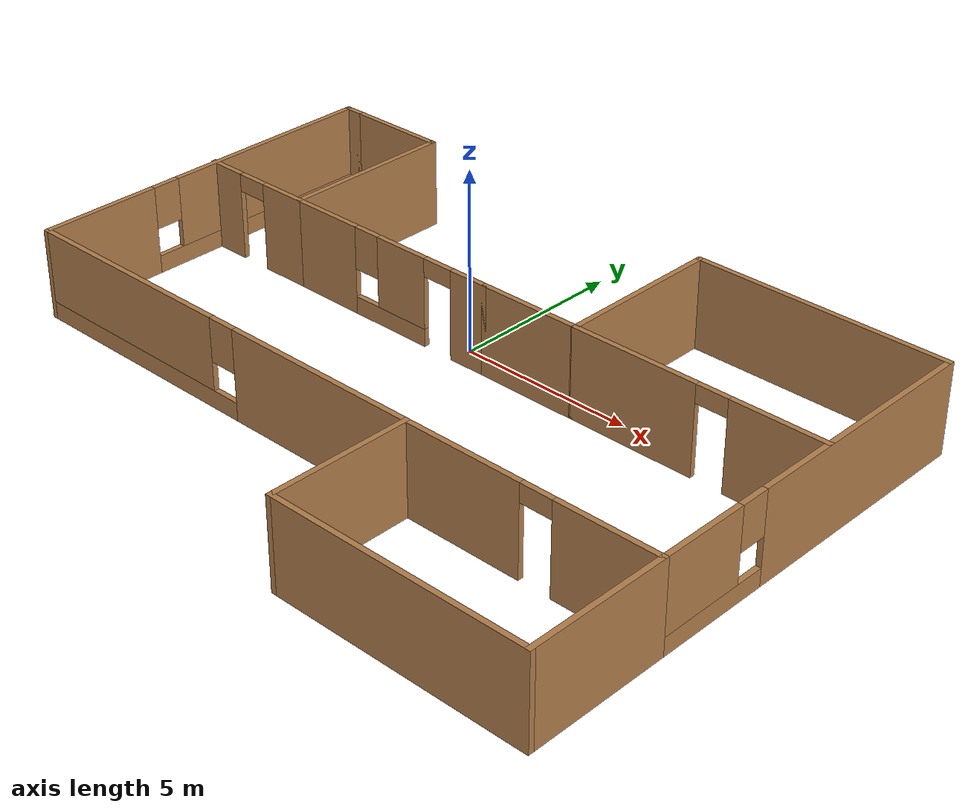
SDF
<?xml version='1.0'?>
<sdf version='1.7'>
  <model name='building'>
    <pose>1.02897 -2.78583 0 0 -0 0</pose>
    <link name='Wall_16'>
      <collision name='Wall_16_Collision'>
        <geometry>
          <box>
            <size>3 0.15 2.5</size>
          </box>
        </geometry>
        <pose>0 0 1.25 0 -0 0</pose>
      </collision>
      <visual name='Wall_16_Visual'>
        <pose>0 0 1.25 0 -0 0</pose>
        <geometry>
          <box>
            <size>3 0.15 2.5</size>
          </box>
        </geometry>
        <material>
          <script>
            <uri>file://media/materials/scripts/gazebo.material</uri>
            <name>Gazebo/Wood</name>
          </script>
          <ambient>1 1 1 1</ambient>
        </material>
        <meta>
          <layer>0</layer>
        </meta>
      </visual>
      <pose>-8.025 7.1 0 0 -0 0</pose>
    </link>
    <link name='Wall_17'>
      <collision name='Wall_17_Collision'>
        <geometry>
          <box>
            <size>5 0.15 2.5</size>
          </box>
        </geometry>
        <pose>0 0 1.25 0 -0 0</pose>
      </collision>
      <visual name='Wall_17_Visual'>
        <pose>0 0 1.25 0 -0 0</pose>
        <geometry>
          <box>
            <size>5 0.15 2.5</size>
          </box>
        </geometry>
        <material>
          <script>
            <uri>file://media/materials/scripts/gazebo.material</uri>
            <name>Gazebo/Wood</name>
          </script>
          <ambient>1 1 1 1</ambient>
        </material>
        <meta>
          <layer>0</layer>
        </meta>
      </visual>
      <pose>-6.6 4.675 0 0 -0 -1.5708</pose>
    </link>
    <link name='Wall_18'>
      <pose>-3.3 2.25 0 0 -0 0</pose>
      <visual name='Wall_18_Visual_0'>
        <pose>-2.26952 0 1.25 0 -0 0</pose>
        <geometry>
          <box>
            <size>2.21096 0.15 2.5</size>
          </box>
        </geometry>
        <material>
          <script>
            <uri>file://media/materials/scripts/gazebo.material</uri>
            <name>Gazebo/Wood</name>
          </script>
          <ambient>1 1 1 1</ambient>
        </material>
        <meta>
          <layer>0</layer>
        </meta>
      </visual>
      <collision name='Wall_18_Collision_0'>
        <geometry>
          <box>
            <size>2.21096 0.15 2.5</size>
          </box>
        </geometry>
        <pose>-2.26952 0 1.25 0 -0 0</pose>
      </collision>
      <visual name='Wall_18_Visual_1'>
        <pose>2.77752 0 1.25 0 -0 0</pose>
        <geometry>
          <box>
            <size>1.19495 0.15 2.5</size>
          </box>
        </geometry>
        <material>
          <script>
            <uri>file://media/materials/scripts/gazebo.material</uri>
            <name>Gazebo/Wood</name>
          </script>
          <ambient>1 1 1 1</ambient>
        </material>
        <meta>
          <layer>0</layer>
        </meta>
      </visual>
      <collision name='Wall_18_Collision_1'>
        <geometry>
          <box>
            <size>1.19495 0.15 2.5</size>
          </box>
        </geometry>
        <pose>2.77752 0 1.25 0 -0 0</pose>
      </collision>
      <visual name='Wall_18_Visual_2'>
        <pose>0.058006 0 0.25 0 -0 0</pose>
        <geometry>
          <box>
            <size>2.44408 0.15 0.5</size>
          </box>
        </geometry>
        <material>
          <script>
            <uri>file://media/materials/scripts/gazebo.material</uri>
            <name>Gazebo/Wood</name>
          </script>
          <ambient>1 1 1 1</ambient>
        </material>
        <meta>
          <layer>0</layer>
        </meta>
      </visual>
      <collision name='Wall_18_Collision_2'>
        <geometry>
          <box>
            <size>2.44408 0.15 0.5</size>
          </box>
        </geometry>
        <pose>0.058006 0 0.25 0 -0 0</pose>
      </collision>
      <visual name='Wall_18_Visual_3'>
        <pose>0.458006 0 1.5 0 -0 0</pose>
        <geometry>
          <box>
            <size>1.64408 0.15 2</size>
          </box>
        </geometry>
        <material>
          <script>
            <uri>file://media/materials/scripts/gazebo.material</uri>
            <name>Gazebo/Wood</name>
          </script>
          <ambient>1 1 1 1</ambient>
        </material>
        <meta>
          <layer>0</layer>
        </meta>
      </visual>
      <collision name='Wall_18_Collision_3'>
        <geometry>
          <box>
            <size>1.64408 0.15 2</size>
          </box>
        </geometry>
        <pose>0.458006 0 1.5 0 -0 0</pose>
      </collision>
      <visual name='Wall_18_Visual_4'>
        <pose>-0.764035 0 1.9 0 -0 0</pose>
        <geometry>
          <box>
            <size>0.8 0.15 1.2</size>
          </box>
        </geometry>
        <material>
          <script>
            <uri>file://media/materials/scripts/gazebo.material</uri>
            <name>Gazebo/Wood</name>
          </script>
          <ambient>1 1 1 1</ambient>
        </material>
        <meta>
          <layer>0</layer>
        </meta>
      </visual>
      <collision name='Wall_18_Collision_4'>
        <geometry>
          <box>
            <size>0.8 0.15 1.2</size>
          </box>
        </geometry>
        <pose>-0.764035 0 1.9 0 -0 0</pose>
      </collision>
      <visual name='Wall_18_Visual_5'>
        <pose>1.73005 0 2.25 0 -0 0</pose>
        <geometry>
          <box>
            <size>0.9 0.15 0.5</size>
          </box>
        </geometry>
        <material>
          <script>
            <uri>file://media/materials/scripts/gazebo.material</uri>
            <name>Gazebo/Wood</name>
          </script>
          <ambient>1 1 1 1</ambient>
        </material>
        <meta>
          <layer>0</layer>
        </meta>
      </visual>
      <collision name='Wall_18_Collision_5'>
        <geometry>
          <box>
            <size>0.9 0.15 0.5</size>
          </box>
        </geometry>
        <pose>1.73005 0 2.25 0 -0 0</pose>
      </collision>
    </link>
    <link name='Wall_19'>
      <collision name='Wall_19_Collision'>
        <geometry>
          <box>
            <size>3 0.15 2.5</size>
          </box>
        </geometry>
        <pose>0 0 1.25 0 -0 0</pose>
      </collision>
      <visual name='Wall_19_Visual'>
        <pose>0 0 1.25 0 -0 0</pose>
        <geometry>
          <box>
            <size>3 0.15 2.5</size>
          </box>
        </geometry>
        <material>
          <script>
            <uri>file://media/materials/scripts/gazebo.material</uri>
            <name>Gazebo/Wood</name>
          </script>
          <ambient>1 1 1 1</ambient>
        </material>
        <meta>
          <layer>0</layer>
        </meta>
      </visual>
      <pose>1.425 2.25 0 0 -0 0</pose>
    </link>
    <link name='Wall_20'>
      <collision name='Wall_20_Collision'>
        <geometry>
          <box>
            <size>4.75 0.15 2.5</size>
          </box>
        </geometry>
        <pose>0 0 1.25 0 -0 0</pose>
      </collision>
      <visual name='Wall_20_Visual'>
        <pose>0 0 1.25 0 -0 0</pose>
        <geometry>
          <box>
            <size>4.75 0.15 2.5</size>
          </box>
        </geometry>
        <material>
          <script>
            <uri>file://media/materials/scripts/gazebo.material</uri>
            <name>Gazebo/Wood</name>
          </script>
          <ambient>1 1 1 1</ambient>
        </material>
        <meta>
          <layer>0</layer>
        </meta>
      </visual>
      <pose>2.85 4.55 0 0 -0 1.5708</pose>
    </link>
    <link name='Wall_21'>
      <collision name='Wall_21_Collision'>
        <geometry>
          <box>
            <size>7.25 0.15 2.5</size>
          </box>
        </geometry>
        <pose>0 0 1.25 0 -0 0</pose>
      </collision>
      <visual name='Wall_21_Visual'>
        <pose>0 0 1.25 0 -0 0</pose>
        <geometry>
          <box>
            <size>7.25 0.15 2.5</size>
          </box>
        </geometry>
        <material>
          <script>
            <uri>file://media/materials/scripts/gazebo.material</uri>
            <name>Gazebo/Wood</name>
          </script>
          <ambient>1 1 1 1</ambient>
        </material>
        <meta>
          <layer>0</layer>
        </meta>
      </visual>
      <pose>6.4 6.85 0 0 -0 0</pose>
    </link>
    <link name='Wall_22'>
      <pose>9.95 1.8 0 0 -0 -1.5708</pose>
      <visual name='Wall_22_Visual_0'>
        <pose>-1.66166 0 1.25 0 -0 0</pose>
        <geometry>
          <box>
            <size>6.92669 0.15 2.5</size>
          </box>
        </geometry>
        <material>
          <script>
            <uri>file://media/materials/scripts/gazebo.material</uri>
            <name>Gazebo/Wood</name>
          </script>
          <ambient>1 1 1 1</ambient>
        </material>
        <meta>
          <layer>0</layer>
        </meta>
      </visual>
      <collision name='Wall_22_Collision_0'>
        <geometry>
          <box>
            <size>6.92669 0.15 2.5</size>
          </box>
        </geometry>
        <pose>-1.66166 0 1.25 0 -0 0</pose>
      </collision>
      <visual name='Wall_22_Visual_1'>
        <pose>3.46334 0 0.25 0 -0 0</pose>
        <geometry>
          <box>
            <size>3.32331 0.15 0.5</size>
          </box>
        </geometry>
        <material>
          <script>
            <uri>file://media/materials/scripts/gazebo.material</uri>
            <name>Gazebo/Wood</name>
          </script>
          <ambient>1 1 1 1</ambient>
        </material>
        <meta>
          <layer>0</layer>
        </meta>
      </visual>
      <collision name='Wall_22_Collision_1'>
        <geometry>
          <box>
            <size>3.32331 0.15 0.5</size>
          </box>
        </geometry>
        <pose>3.46334 0 0.25 0 -0 0</pose>
      </collision>
      <visual name='Wall_22_Visual_2'>
        <pose>3.86334 0 1.5 0 -0 0</pose>
        <geometry>
          <box>
            <size>2.52331 0.15 2</size>
          </box>
        </geometry>
        <material>
          <script>
            <uri>file://media/materials/scripts/gazebo.material</uri>
            <name>Gazebo/Wood</name>
          </script>
          <ambient>1 1 1 1</ambient>
        </material>
        <meta>
          <layer>0</layer>
        </meta>
      </visual>
      <collision name='Wall_22_Collision_2'>
        <geometry>
          <box>
            <size>2.52331 0.15 2</size>
          </box>
        </geometry>
        <pose>3.86334 0 1.5 0 -0 0</pose>
      </collision>
      <visual name='Wall_22_Visual_3'>
        <pose>2.20169 0 1.9 0 -0 0</pose>
        <geometry>
          <box>
            <size>0.8 0.15 1.2</size>
          </box>
        </geometry>
        <material>
          <script>
            <uri>file://media/materials/scripts/gazebo.material</uri>
            <name>Gazebo/Wood</name>
          </script>
          <ambient>1 1 1 1</ambient>
        </material>
        <meta>
          <layer>0</layer>
        </meta>
      </visual>
      <collision name='Wall_22_Collision_3'>
        <geometry>
          <box>
            <size>0.8 0.15 1.2</size>
          </box>
        </geometry>
        <pose>2.20169 0 1.9 0 -0 0</pose>
      </collision>
    </link>
    <link name='Wall_23'>
      <pose>0.024999 -3.25 0 0 -0 3.14159</pose>
      <visual name='Wall_23_Visual_0'>
        <pose>-8.54413 0 1.25 0 -0 0</pose>
        <geometry>
          <box>
            <size>2.91174 0.15 2.5</size>
          </box>
        </geometry>
        <material>
          <script>
            <uri>file://media/materials/scripts/gazebo.material</uri>
            <name>Gazebo/Wood</name>
          </script>
          <ambient>1 1 1 1</ambient>
        </material>
        <meta>
          <layer>0</layer>
        </meta>
      </visual>
      <collision name='Wall_23_Collision_0'>
        <geometry>
          <box>
            <size>2.91174 0.15 2.5</size>
          </box>
        </geometry>
        <pose>-8.54413 0 1.25 0 -0 0</pose>
      </collision>
      <visual name='Wall_23_Visual_1'>
        <pose>-1.69222 0 1.25 0 -0 0</pose>
        <geometry>
          <box>
            <size>8.99207 0.15 2.5</size>
          </box>
        </geometry>
        <material>
          <script>
            <uri>file://media/materials/scripts/gazebo.material</uri>
            <name>Gazebo/Wood</name>
          </script>
          <ambient>1 1 1 1</ambient>
        </material>
        <meta>
          <layer>0</layer>
        </meta>
      </visual>
      <collision name='Wall_23_Collision_1'>
        <geometry>
          <box>
            <size>8.99207 0.15 2.5</size>
          </box>
        </geometry>
        <pose>-1.69222 0 1.25 0 -0 0</pose>
      </collision>
      <visual name='Wall_23_Visual_2'>
        <pose>6.40191 0 0.25 0 -0 0</pose>
        <geometry>
          <box>
            <size>7.19618 0.15 0.5</size>
          </box>
        </geometry>
        <material>
          <script>
            <uri>file://media/materials/scripts/gazebo.material</uri>
            <name>Gazebo/Wood</name>
          </script>
          <ambient>1 1 1 1</ambient>
        </material>
        <meta>
          <layer>0</layer>
        </meta>
      </visual>
      <collision name='Wall_23_Collision_2'>
        <geometry>
          <box>
            <size>7.19618 0.15 0.5</size>
          </box>
        </geometry>
        <pose>6.40191 0 0.25 0 -0 0</pose>
      </collision>
      <visual name='Wall_23_Visual_3'>
        <pose>6.80191 0 1.5 0 -0 0</pose>
        <geometry>
          <box>
            <size>6.39619 0.15 2</size>
          </box>
        </geometry>
        <material>
          <script>
            <uri>file://media/materials/scripts/gazebo.material</uri>
            <name>Gazebo/Wood</name>
          </script>
          <ambient>1 1 1 1</ambient>
        </material>
        <meta>
          <layer>0</layer>
        </meta>
      </visual>
      <collision name='Wall_23_Collision_3'>
        <geometry>
          <box>
            <size>6.39619 0.15 2</size>
          </box>
        </geometry>
        <pose>6.80191 0 1.5 0 -0 0</pose>
      </collision>
      <visual name='Wall_23_Visual_4'>
        <pose>3.20382 0 1.9 0 -0 0</pose>
        <geometry>
          <box>
            <size>0.8 0.15 1.2</size>
          </box>
        </geometry>
        <material>
          <script>
            <uri>file://media/materials/scripts/gazebo.material</uri>
            <name>Gazebo/Wood</name>
          </script>
          <ambient>1 1 1 1</ambient>
        </material>
        <meta>
          <layer>0</layer>
        </meta>
      </visual>
      <collision name='Wall_23_Collision_4'>
        <geometry>
          <box>
            <size>0.8 0.15 1.2</size>
          </box>
        </geometry>
        <pose>3.20382 0 1.9 0 -0 0</pose>
      </collision>
      <visual name='Wall_23_Visual_5'>
        <pose>-6.63826 0 2.25 0 -0 0</pose>
        <geometry>
          <box>
            <size>0.9 0.15 0.5</size>
          </box>
        </geometry>
        <material>
          <script>
            <uri>file://media/materials/scripts/gazebo.material</uri>
            <name>Gazebo/Wood</name>
          </script>
          <ambient>1 1 1 1</ambient>
        </material>
        <meta>
          <layer>0</layer>
        </meta>
      </visual>
      <collision name='Wall_23_Collision_5'>
        <geometry>
          <box>
            <size>0.9 0.15 0.5</size>
          </box>
        </geometry>
        <pose>-6.63826 0 2.25 0 -0 0</pose>
      </collision>
    </link>
    <link name='Wall_24'>
      <pose>-9.9 1.925 0 0 -0 1.5708</pose>
      <visual name='Wall_24_Visual_0'>
        <pose>-3.54546 0 1.25 0 -0 0</pose>
        <geometry>
          <box>
            <size>3.40908 0.15 2.5</size>
          </box>
        </geometry>
        <material>
          <script>
            <uri>file://media/materials/scripts/gazebo.material</uri>
            <name>Gazebo/Wood</name>
          </script>
          <ambient>1 1 1 1</ambient>
        </material>
        <meta>
          <layer>0</layer>
        </meta>
      </visual>
      <collision name='Wall_24_Collision_0'>
        <geometry>
          <box>
            <size>3.40908 0.15 2.5</size>
          </box>
        </geometry>
        <pose>-3.54546 0 1.25 0 -0 0</pose>
      </collision>
      <visual name='Wall_24_Visual_1'>
        <pose>1.70454 0 0.25 0 -0 0</pose>
        <geometry>
          <box>
            <size>7.09092 0.15 0.5</size>
          </box>
        </geometry>
        <material>
          <script>
            <uri>file://media/materials/scripts/gazebo.material</uri>
            <name>Gazebo/Wood</name>
          </script>
          <ambient>1 1 1 1</ambient>
        </material>
        <meta>
          <layer>0</layer>
        </meta>
      </visual>
      <collision name='Wall_24_Collision_1'>
        <geometry>
          <box>
            <size>7.09092 0.15 0.5</size>
          </box>
        </geometry>
        <pose>1.70454 0 0.25 0 -0 0</pose>
      </collision>
      <visual name='Wall_24_Visual_2'>
        <pose>2.10454 0 1.5 0 -0 0</pose>
        <geometry>
          <box>
            <size>6.29092 0.15 2</size>
          </box>
        </geometry>
        <material>
          <script>
            <uri>file://media/materials/scripts/gazebo.material</uri>
            <name>Gazebo/Wood</name>
          </script>
          <ambient>1 1 1 1</ambient>
        </material>
        <meta>
          <layer>0</layer>
        </meta>
      </visual>
      <collision name='Wall_24_Collision_2'>
        <geometry>
          <box>
            <size>6.29092 0.15 2</size>
          </box>
        </geometry>
        <pose>2.10454 0 1.5 0 -0 0</pose>
      </collision>
      <visual name='Wall_24_Visual_3'>
        <pose>-1.44092 0 1.9 0 -0 0</pose>
        <geometry>
          <box>
            <size>0.8 0.15 1.2</size>
          </box>
        </geometry>
        <material>
          <script>
            <uri>file://media/materials/scripts/gazebo.material</uri>
            <name>Gazebo/Wood</name>
          </script>
          <ambient>1 1 1 1</ambient>
        </material>
        <meta>
          <layer>0</layer>
        </meta>
      </visual>
      <collision name='Wall_24_Collision_3'>
        <geometry>
          <box>
            <size>0.8 0.15 1.2</size>
          </box>
        </geometry>
        <pose>-1.44092 0 1.9 0 -0 0</pose>
      </collision>
    </link>
    <link name='Wall_25'>
      <collision name='Wall_25_Collision'>
        <geometry>
          <box>
            <size>0.6 0.15 2.5</size>
          </box>
        </geometry>
        <pose>0 0 1.25 0 -0 0</pose>
      </collision>
      <visual name='Wall_25_Visual'>
        <pose>0 0 1.25 0 -0 0</pose>
        <geometry>
          <box>
            <size>0.6 0.15 2.5</size>
          </box>
        </geometry>
        <material>
          <script>
            <uri>file://media/materials/scripts/gazebo.material</uri>
            <name>Gazebo/Wood</name>
          </script>
          <ambient>1 1 1 1</ambient>
        </material>
        <meta>
          <layer>0</layer>
        </meta>
      </visual>
      <pose>-9.675 7.1 0 0 -0 0</pose>
    </link>
    <link name='Wall_29'>
      <pose>6.4 2.25 0 0 -0 0</pose>
      <visual name='Wall_29_Visual_0'>
        <pose>-1.79532 0 1.25 0 -0 0</pose>
        <geometry>
          <box>
            <size>3.65936 0.15 2.5</size>
          </box>
        </geometry>
        <material>
          <script>
            <uri>file://media/materials/scripts/gazebo.material</uri>
            <name>Gazebo/Wood</name>
          </script>
          <ambient>1 1 1 1</ambient>
        </material>
        <meta>
          <layer>0</layer>
        </meta>
      </visual>
      <collision name='Wall_29_Collision_0'>
        <geometry>
          <box>
            <size>3.65936 0.15 2.5</size>
          </box>
        </geometry>
        <pose>-1.79532 0 1.25 0 -0 0</pose>
      </collision>
      <visual name='Wall_29_Visual_1'>
        <pose>2.27968 0 1.25 0 -0 0</pose>
        <geometry>
          <box>
            <size>2.69064 0.15 2.5</size>
          </box>
        </geometry>
        <material>
          <script>
            <uri>file://media/materials/scripts/gazebo.material</uri>
            <name>Gazebo/Wood</name>
          </script>
          <ambient>1 1 1 1</ambient>
        </material>
        <meta>
          <layer>0</layer>
        </meta>
      </visual>
      <collision name='Wall_29_Collision_1'>
        <geometry>
          <box>
            <size>2.69064 0.15 2.5</size>
          </box>
        </geometry>
        <pose>2.27968 0 1.25 0 -0 0</pose>
      </collision>
      <visual name='Wall_29_Visual_2'>
        <pose>0.484362 0 2.25 0 -0 0</pose>
        <geometry>
          <box>
            <size>0.9 0.15 0.5</size>
          </box>
        </geometry>
        <material>
          <script>
            <uri>file://media/materials/scripts/gazebo.material</uri>
            <name>Gazebo/Wood</name>
          </script>
          <ambient>1 1 1 1</ambient>
        </material>
        <meta>
          <layer>0</layer>
        </meta>
      </visual>
      <collision name='Wall_29_Collision_2'>
        <geometry>
          <box>
            <size>0.9 0.15 0.5</size>
          </box>
        </geometry>
        <pose>0.484362 0 2.25 0 -0 0</pose>
      </collision>
    </link>
    <link name='Wall_31'>
      <pose>-8.275 2.25 0 0 -0 3.14159</pose>
      <visual name='Wall_31_Visual_0'>
        <pose>-1.03322 0 1.25 0 -0 0</pose>
        <geometry>
          <box>
            <size>1.43357 0.15 2.5</size>
          </box>
        </geometry>
        <material>
          <script>
            <uri>file://media/materials/scripts/gazebo.material</uri>
            <name>Gazebo/Wood</name>
          </script>
          <ambient>1 1 1 1</ambient>
        </material>
        <meta>
          <layer>0</layer>
        </meta>
      </visual>
      <collision name='Wall_31_Collision_0'>
        <geometry>
          <box>
            <size>1.43357 0.15 2.5</size>
          </box>
        </geometry>
        <pose>-1.03322 0 1.25 0 -0 0</pose>
      </collision>
      <visual name='Wall_31_Visual_1'>
        <pose>1.16678 0 1.25 0 -0 0</pose>
        <geometry>
          <box>
            <size>1.16643 0.15 2.5</size>
          </box>
        </geometry>
        <material>
          <script>
            <uri>file://media/materials/scripts/gazebo.material</uri>
            <name>Gazebo/Wood</name>
          </script>
          <ambient>1 1 1 1</ambient>
        </material>
        <meta>
          <layer>0</layer>
        </meta>
      </visual>
      <collision name='Wall_31_Collision_1'>
        <geometry>
          <box>
            <size>1.16643 0.15 2.5</size>
          </box>
        </geometry>
        <pose>1.16678 0 1.25 0 -0 0</pose>
      </collision>
      <visual name='Wall_31_Visual_2'>
        <pose>0.133567 0 2.25 0 -0 0</pose>
        <geometry>
          <box>
            <size>0.9 0.15 0.5</size>
          </box>
        </geometry>
        <material>
          <script>
            <uri>file://media/materials/scripts/gazebo.material</uri>
            <name>Gazebo/Wood</name>
          </script>
          <ambient>1 1 1 1</ambient>
        </material>
        <meta>
          <layer>0</layer>
        </meta>
      </visual>
      <collision name='Wall_31_Collision_2'>
        <geometry>
          <box>
            <size>0.9 0.15 0.5</size>
          </box>
        </geometry>
        <pose>0.133567 0 2.25 0 -0 0</pose>
      </collision>
    </link>
    <link name='Wall_33'>
      <collision name='Wall_33_Collision'>
        <geometry>
          <box>
            <size>4 0.15 2.5</size>
          </box>
        </geometry>
        <pose>0 0 1.25 0 -0 0</pose>
      </collision>
      <visual name='Wall_33_Visual'>
        <pose>0 0 1.25 0 -0 0</pose>
        <geometry>
          <box>
            <size>4 0.15 2.5</size>
          </box>
        </geometry>
        <material>
          <script>
            <uri>file://media/materials/scripts/gazebo.material</uri>
            <name>Gazebo/Wood</name>
          </script>
          <ambient>1 1 1 1</ambient>
        </material>
        <meta>
          <layer>0</layer>
        </meta>
      </visual>
      <pose>9.95 -5.175 0 0 -0 -1.5708</pose>
    </link>
    <link name='Wall_36'>
      <collision name='Wall_36_Collision'>
        <geometry>
          <box>
            <size>7.25 0.15 2.5</size>
          </box>
        </geometry>
        <pose>0 0 1.25 0 -0 0</pose>
      </collision>
      <visual name='Wall_36_Visual'>
        <pose>0 0 1.25 0 -0 0</pose>
        <geometry>
          <box>
            <size>7.25 0.15 2.5</size>
          </box>
        </geometry>
        <material>
          <script>
            <uri>file://media/materials/scripts/gazebo.material</uri>
            <name>Gazebo/Wood</name>
          </script>
          <ambient>1 1 1 1</ambient>
        </material>
        <meta>
          <layer>0</layer>
        </meta>
      </visual>
      <pose>6.4 -7.1 0 0 -0 3.14159</pose>
    </link>
    <link name='Wall_37'>
      <collision name='Wall_37_Collision'>
        <geometry>
          <box>
            <size>4 0.15 2.5</size>
          </box>
        </geometry>
        <pose>0 0 1.25 0 -0 0</pose>
      </collision>
      <visual name='Wall_37_Visual'>
        <pose>0 0 1.25 0 -0 0</pose>
        <geometry>
          <box>
            <size>4 0.15 2.5</size>
          </box>
        </geometry>
        <material>
          <script>
            <uri>file://media/materials/scripts/gazebo.material</uri>
            <name>Gazebo/Wood</name>
          </script>
          <ambient>1 1 1 1</ambient>
        </material>
        <meta>
          <layer>0</layer>
        </meta>
      </visual>
      <pose>2.85 -5.175 0 0 -0 1.5708</pose>
    </link>
    <static>1</static>
  </model>
</sdf>
